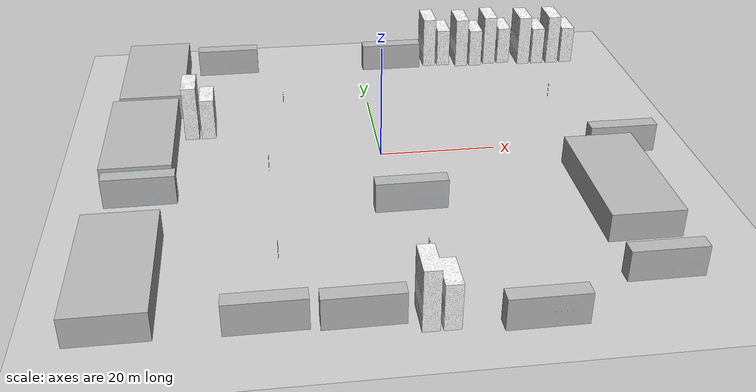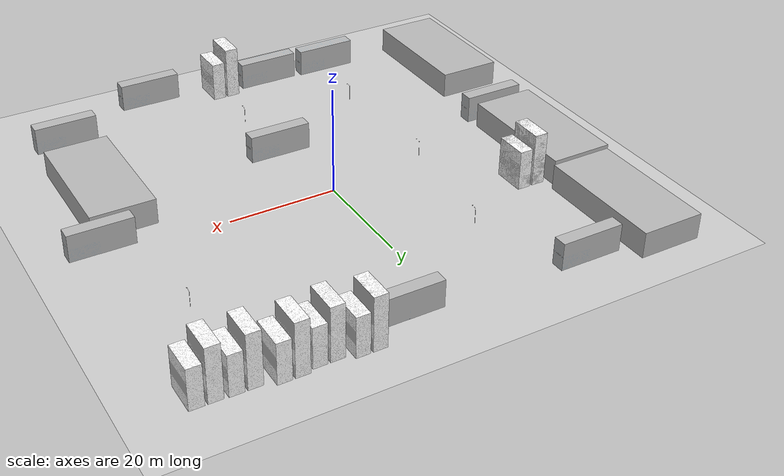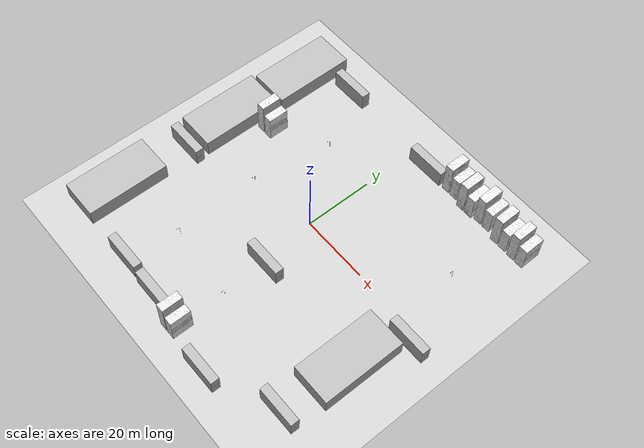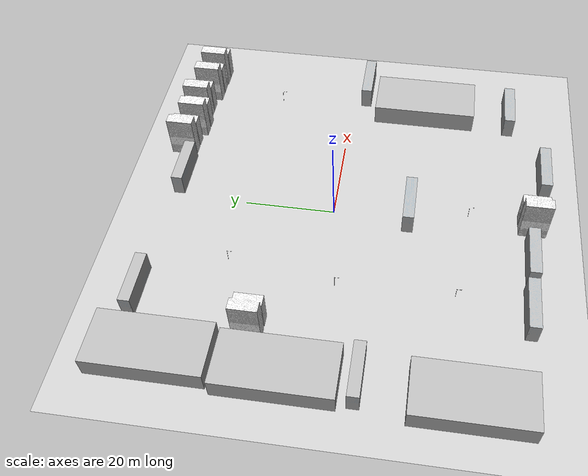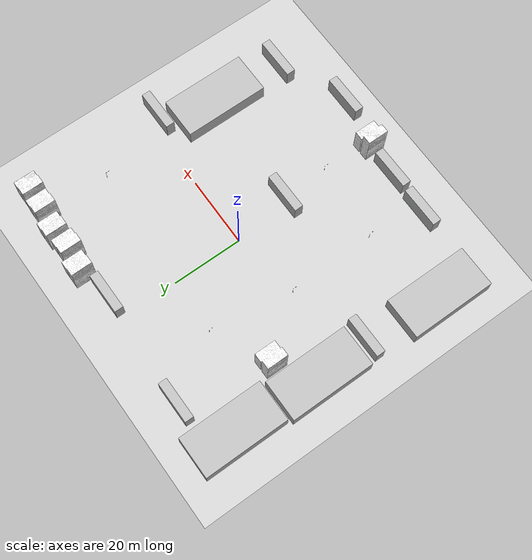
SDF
<sdf version="1.4">
 <world name="default">
  <light name="sun" type="directional">
   <pose>0 0 10 0 -0 0</pose>
   <diffuse>0.8 0.8 0.8 1</diffuse>
   <specular>0.2 0.2 0.2 1</specular>
   <attenuation>
    <range>1000</range>
    <constant>0.9</constant>
    <linear>0.01</linear>
    <quadratic>0.001</quadratic>
   </attenuation>
   <direction>-0.5 0.1 -0.9</direction>
  </light>
  <model name="ground_plane">
   <static>1</static>
   <link name="link">
    <collision name="collision">
     <geometry><plane><normal>0 0 1</normal><size>100 100</size></plane></geometry>
     <surface><friction><ode><mu>100</mu><mu2>50</mu2></ode></friction></surface>
    </collision>
    <visual name="visual">
     <cast_shadows>0</cast_shadows>
     <geometry><plane><normal>0 0 1</normal><size>100 100</size></plane></geometry>
     <material>
      <script><uri>file://media/materials/scripts/gazebo.material</uri><name>Gazebo/Grey</name></script>
     </material>
    </visual>
    <velocity_decay><linear>0</linear><angular>0</angular></velocity_decay>
   </link>
  </model>
  <physics type="ode">
   <max_step_size>0.001</max_step_size>
   <real_time_factor>1</real_time_factor>
   <real_time_update_rate>1000</real_time_update_rate>
   <gravity>0 0 -9.8</gravity>
  </physics>
  <scene><ambient>0.4 0.4 0.4 1</ambient><background>0.7 0.7 0.7 1</background><shadows>1</shadows></scene>
  <spherical_coordinates>
   <surface_model>EARTH_WGS84</surface_model>
   <latitude_deg>0</latitude_deg>
   <longitude_deg>0</longitude_deg>
   <elevation>0</elevation>
   <heading_deg>0</heading_deg>
  </spherical_coordinates>
  <model name="container-multi-multi-stack">
   <static>1</static>
   <link name="chassis">
    <collision name="collision">
     <geometry><mesh><uri>model://container-multi-multi-stack/containerstack2.dae</uri></mesh></geometry>
    </collision>
    <visual name="visual">
     <geometry><mesh><uri>model://container-multi-multi-stack/containerstack2.dae</uri></mesh></geometry>
    </visual>
    <velocity_decay><linear>0</linear><angular>0</angular></velocity_decay>
   </link>
   <pose>36.4495 -18 0 0 -0 0</pose>
  </model>
  <model name="container-triple-stack">
   <static>1</static>
   <link name="chassis">
    <collision name="collision">
     <geometry><mesh><uri>model://container-triple-stack/model.dae</uri></mesh></geometry>
    </collision>
    <visual name="visual">
     <geometry><mesh><uri>model://container-triple-stack/model.dae</uri></mesh></geometry>
    </visual>
    <velocity_decay><linear>0</linear><angular>0</angular></velocity_decay>
   </link>
   <pose>101.955 -4.56708 0 0 -0 0</pose>
  </model>
  <model name="container-triple-stack_0">
   <static>1</static>
   <link name="chassis">
    <collision name="collision">
     <geometry><mesh><uri>model://container-triple-stack/model.dae</uri></mesh></geometry>
    </collision>
    <visual name="visual">
     <geometry><mesh><uri>model://container-triple-stack/model.dae</uri></mesh></geometry>
    </visual>
    <velocity_decay><linear>0</linear><angular>0</angular></velocity_decay>
   </link>
   <pose>76.2636 -48.0928 0 0 -0 0</pose>
  </model>
  <model name="container-triple-stack_1">
   <static>1</static>
   <link name="chassis">
    <collision name="collision">
     <geometry><mesh><uri>model://container-triple-stack/model.dae</uri></mesh></geometry>
    </collision>
    <visual name="visual">
     <geometry><mesh><uri>model://container-triple-stack/model.dae</uri></mesh></geometry>
    </visual>
    <velocity_decay><linear>0</linear><angular>0</angular></velocity_decay>
   </link>
   <pose>62.7795 -18.0607 0 0 -0 0</pose>
  </model>
  <model name="container-multi-stack">
   <static>1</static>
   <link name="chassis">
    <collision name="collision">
     <geometry><mesh><uri>model://container-multi-stack/container-multi-stack.dae</uri></mesh></geometry>
    </collision>
    <visual name="visual">
     <geometry><mesh><uri>model://container-multi-stack/container-multi-stack.dae</uri></mesh></geometry>
    </visual>
    <velocity_decay><linear>0</linear><angular>0</angular></velocity_decay>
   </link>
   <pose>39.0709 32.3907 0 0 -0 0</pose>
  </model>
  <model name="container-multi-stack_0">
   <static>1</static>
   <link name="chassis">
    <collision name="collision">
     <geometry><mesh><uri>model://container-multi-stack/container-multi-stack.dae</uri></mesh></geometry>
    </collision>
    <visual name="visual">
     <geometry><mesh><uri>model://container-multi-stack/container-multi-stack.dae</uri></mesh></geometry>
    </visual>
    <velocity_decay><linear>0</linear><angular>0</angular></velocity_decay>
   </link>
   <pose>-0.868908 -48.0656 0 0 -0 0</pose>
  </model>
  <model name="container-multi-multi-stack_0">
   <static>1</static>
   <link name="chassis">
    <collision name="collision">
     <geometry><mesh><uri>model://container-multi-multi-stack/containerstack2.dae</uri></mesh></geometry>
    </collision>
    <visual name="visual">
     <geometry><mesh><uri>model://container-multi-multi-stack/containerstack2.dae</uri></mesh></geometry>
    </visual>
    <velocity_decay><linear>0</linear><angular>0</angular></velocity_decay>
   </link>
   <pose>-40 30 0 0 -0 0</pose>
  </model>
  <model name="container-multi-multi-stack_1">
   <static>1</static>
   <link name="chassis">
    <collision name="collision">
     <geometry><mesh><uri>model://container-multi-multi-stack/containerstack2.dae</uri></mesh></geometry>
    </collision>
    <visual name="visual">
     <geometry><mesh><uri>model://container-multi-multi-stack/containerstack2.dae</uri></mesh></geometry>
    </visual>
    <velocity_decay><linear>0</linear><angular>0</angular></velocity_decay>
   </link>
   <pose>-41 5 0 0 -0 0</pose>
  </model>
  <model name="container-multi-stack_1">
   <static>1</static>
   <link name="chassis">
    <collision name="collision">
     <geometry><mesh><uri>model://container-multi-stack/container-multi-stack.dae</uri></mesh></geometry>
    </collision>
    <visual name="visual">
     <geometry><mesh><uri>model://container-multi-stack/container-multi-stack.dae</uri></mesh></geometry>
    </visual>
    <velocity_decay><linear>0</linear><angular>0</angular></velocity_decay>
   </link>
   <pose>-34 8.40546 0 0 -0 0</pose>
  </model>
  <model name="container-triple-stack_2">
   <static>1</static>
   <link name="chassis">
    <collision name="collision">
     <geometry><mesh><uri>model://container-triple-stack/model.dae</uri></mesh></geometry>
    </collision>
    <visual name="visual">
     <geometry><mesh><uri>model://container-triple-stack/model.dae</uri></mesh></geometry>
    </visual>
    <velocity_decay><linear>0</linear><angular>0</angular></velocity_decay>
   </link>
   <pose>34 36 0 0 -0 0</pose>
  </model>
  <model name="container-triple-stack_3">
   <static>1</static>
   <link name="chassis">
    <collision name="collision">
     <geometry><mesh><uri>model://container-triple-stack/model.dae</uri></mesh></geometry>
    </collision>
    <visual name="visual">
     <geometry><mesh><uri>model://container-triple-stack/model.dae</uri></mesh></geometry>
    </visual>
    <velocity_decay><linear>0</linear><angular>0</angular></velocity_decay>
   </link>
   <pose>67 34.5878 0 0 -0 0</pose>
  </model>
  <model name="container-multi-stack_2">
   <static>1</static>
   <link name="chassis">
    <collision name="collision">
     <geometry><mesh><uri>model://container-multi-stack/container-multi-stack.dae</uri></mesh></geometry>
    </collision>
    <visual name="visual">
     <geometry><mesh><uri>model://container-multi-stack/container-multi-stack.dae</uri></mesh></geometry>
    </visual>
    <velocity_decay><linear>0</linear><angular>0</angular></velocity_decay>
   </link>
   <pose>13.4452 34 0 0 -0 0</pose>
  </model>
  <model name="container-multi-stack_3">
   <static>1</static>
   <link name="chassis">
    <collision name="collision">
     <geometry><mesh><uri>model://container-multi-stack/container-multi-stack.dae</uri></mesh></geometry>
    </collision>
    <visual name="visual">
     <geometry><mesh><uri>model://container-multi-stack/container-multi-stack.dae</uri></mesh></geometry>
    </visual>
    <velocity_decay><linear>0</linear><angular>0</angular></velocity_decay>
   </link>
   <pose>20 33 0 0 -0 0</pose>
  </model>
  <model name="container-multi-stack_4">
   <static>1</static>
   <link name="chassis">
    <collision name="collision">
     <geometry><mesh><uri>model://container-multi-stack/container-multi-stack.dae</uri></mesh></geometry>
    </collision>
    <visual name="visual">
     <geometry><mesh><uri>model://container-multi-stack/container-multi-stack.dae</uri></mesh></geometry>
    </visual>
    <velocity_decay><linear>0</linear><angular>0</angular></velocity_decay>
   </link>
   <pose>26 33.5733 0 0 -0 0</pose>
  </model>
  <model name="container-triple-stack_4">
   <static>1</static>
   <link name="chassis">
    <collision name="collision">
     <geometry><mesh><uri>model://container-triple-stack/model.dae</uri></mesh></geometry>
    </collision>
    <visual name="visual">
     <geometry><mesh><uri>model://container-triple-stack/model.dae</uri></mesh></geometry>
    </visual>
    <velocity_decay><linear>0</linear><angular>0</angular></velocity_decay>
   </link>
   <pose>20 -11.4876 0 0 -0 0</pose>
  </model>
  <model name="container-triple-stack_5">
   <static>1</static>
   <link name="chassis">
    <collision name="collision">
     <geometry><mesh><uri>model://container-triple-stack/model.dae</uri></mesh></geometry>
    </collision>
    <visual name="visual">
     <geometry><mesh><uri>model://container-triple-stack/model.dae</uri></mesh></geometry>
    </visual>
    <velocity_decay><linear>0</linear><angular>0</angular></velocity_decay>
   </link>
   <pose>39 -44.5666 0 0 -0 0</pose>
  </model>
  <model name="container-triple-stack_6">
   <static>1</static>
   <link name="chassis">
    <collision name="collision">
     <geometry><mesh><uri>model://container-triple-stack/model.dae</uri></mesh></geometry>
    </collision>
    <visual name="visual">
     <geometry><mesh><uri>model://container-triple-stack/model.dae</uri></mesh></geometry>
    </visual>
    <velocity_decay><linear>0</linear><angular>0</angular></velocity_decay>
   </link>
   <pose>52 -45 0 0 -0 0</pose>
  </model>
  <model name="container-multi-stack_5">
   <static>1</static>
   <link name="chassis">
    <collision name="collision">
     <geometry><mesh><uri>model://container-multi-stack/container-multi-stack.dae</uri></mesh></geometry>
    </collision>
    <visual name="visual">
     <geometry><mesh><uri>model://container-multi-stack/container-multi-stack.dae</uri></mesh></geometry>
    </visual>
    <velocity_decay><linear>0</linear><angular>0</angular></velocity_decay>
   </link>
   <pose>33 32.5453 0 0 -0 0</pose>
  </model>
  <model name="container-multi-multi-stack_2">
   <static>1</static>
   <link name="chassis">
    <collision name="collision">
     <geometry><mesh><uri>model://container-multi-multi-stack/containerstack2.dae</uri></mesh></geometry>
    </collision>
    <visual name="visual">
     <geometry><mesh><uri>model://container-multi-multi-stack/containerstack2.dae</uri></mesh></geometry>
    </visual>
    <velocity_decay><linear>0</linear><angular>0</angular></velocity_decay>
   </link>
   <pose>-42 -32 0 0 -0 0</pose>
  </model>
  <model name="container-triple-stack_7">
   <static>1</static>
   <link name="chassis">
    <collision name="collision">
     <geometry><mesh><uri>model://container-triple-stack/model.dae</uri></mesh></geometry>
    </collision>
    <visual name="visual">
     <geometry><mesh><uri>model://container-triple-stack/model.dae</uri></mesh></geometry>
    </visual>
    <velocity_decay><linear>0</linear><angular>0</angular></velocity_decay>
   </link>
   <pose>96 -40 0 0 -0 0</pose>
  </model>
  <model name="Lamp Post">
   <static>1</static>
   <link name="link">
    <collision name="collision">
     <geometry><mesh><uri>model://lamp_post/meshes/lamp_post.dae</uri></mesh></geometry>
    </collision>
    <visual name="visual">
     <geometry><mesh><uri>model://lamp_post/meshes/lamp_post.dae</uri></mesh></geometry>
    </visual>
    <velocity_decay><linear>0</linear><angular>0</angular></velocity_decay>
   </link>
   <pose>-16 20.4192 0 0 -0 0</pose>
  </model>
  <model name="Lamp Post_0">
   <static>1</static>
   <link name="link">
    <collision name="collision">
     <geometry><mesh><uri>model://lamp_post/meshes/lamp_post.dae</uri></mesh></geometry>
    </collision>
    <visual name="visual">
     <geometry><mesh><uri>model://lamp_post/meshes/lamp_post.dae</uri></mesh></geometry>
    </visual>
    <velocity_decay><linear>0</linear><angular>0</angular></velocity_decay>
   </link>
   <pose>-19.5236 -3 0 0 -0 0</pose>
  </model>
  <model name="Lamp Post_1">
   <static>1</static>
   <link name="link">
    <collision name="collision">
     <geometry><mesh><uri>model://lamp_post/meshes/lamp_post.dae</uri></mesh></geometry>
    </collision>
    <visual name="visual">
     <geometry><mesh><uri>model://lamp_post/meshes/lamp_post.dae</uri></mesh></geometry>
    </visual>
    <velocity_decay><linear>0</linear><angular>0</angular></velocity_decay>
   </link>
   <pose>-19 -28 0 0 -0 0</pose>
  </model>
  <model name="Lamp Post_2">
   <static>1</static>
   <link name="link">
    <collision name="collision">
     <geometry><mesh><uri>model://lamp_post/meshes/lamp_post.dae</uri></mesh></geometry>
    </collision>
    <visual name="visual">
     <geometry><mesh><uri>model://lamp_post/meshes/lamp_post.dae</uri></mesh></geometry>
    </visual>
    <velocity_decay><linear>0</linear><angular>0</angular></velocity_decay>
   </link>
   <pose>3 -30 0 0 -0 0</pose>
  </model>
  <model name="Lamp Post_3">
   <static>1</static>
   <link name="link">
    <collision name="collision">
     <geometry><mesh><uri>model://lamp_post/meshes/lamp_post.dae</uri></mesh></geometry>
    </collision>
    <visual name="visual">
     <geometry><mesh><uri>model://lamp_post/meshes/lamp_post.dae</uri></mesh></geometry>
    </visual>
    <velocity_decay><linear>0</linear><angular>0</angular></velocity_decay>
   </link>
   <pose>35 18 0 0 -0 0</pose>
  </model>
 </world>
</sdf>
